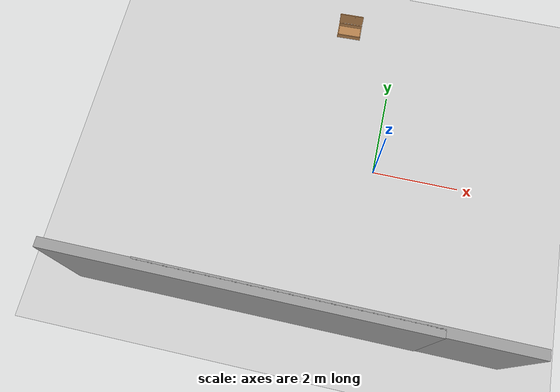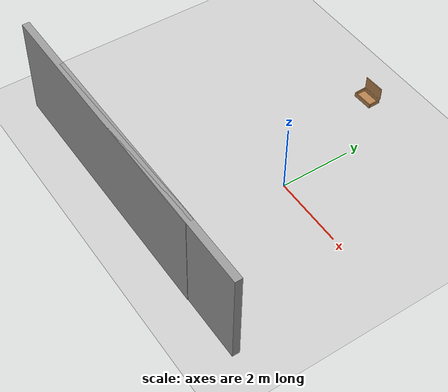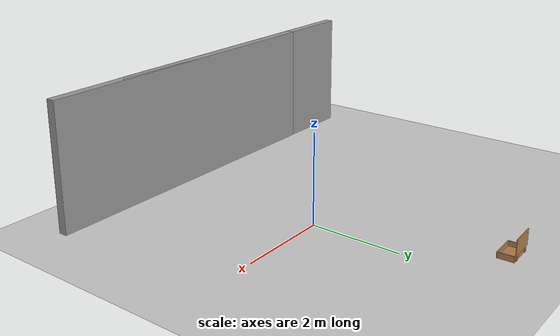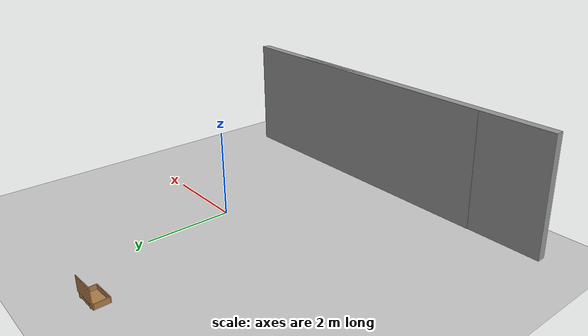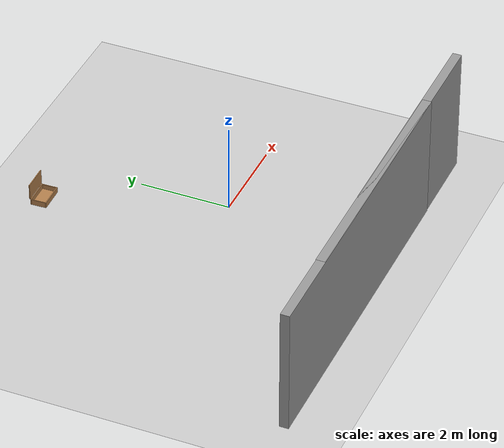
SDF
<sdf version="1.6">
 <world name="default">
  <model name="ground_plane">
   <static>1</static>
   <link name="link">
    <collision name="collision">
     <geometry><plane><normal>0 0 1</normal><size>100 100</size></plane></geometry>
     <surface><friction><ode><mu>100</mu><mu2>50</mu2></ode></friction></surface>
    </collision>
    <visual name="visual">
     <transparency>1</transparency>
     <cast_shadows>0</cast_shadows>
     <geometry><plane><normal>0 0 1</normal><size>100 100</size></plane></geometry>
     <material>
      <script><uri>file://media/materials/scripts/gazebo.material</uri><name>Gazebo/Grey</name></script>
     </material>
    </visual>
   </link>
  </model>
  <model name="grey_wall">
   <static>1</static>
   <link name="link">
    <pose>0 0 1.4 0 -0 0</pose>
    <collision name="collision"><geometry><box><size>7.5 0.2 2.8</size></box></geometry></collision>
    <visual name="visual">
     <cast_shadows>0</cast_shadows>
     <geometry><box><size>7.5 0.2 2.8</size></box></geometry>
     <material>
      <script>
       <uri>model://grey_wall/materials/scripts</uri>
       <uri>model://grey_wall/materials/textures</uri>
       <name>vrc/grey_wall</name>
      </script>
     </material>
    </visual>
   </link>
   <pose>-2.21193 -3.74132 0 0 -0 0</pose>
  </model>
  <model name="grey_wall_clone">
   <static>1</static>
   <link name="link">
    <pose>0 0 1.4 0 -0 0</pose>
    <collision name="collision"><geometry><box><size>7.5 0.2 2.8</size></box></geometry></collision>
    <visual name="visual">
     <cast_shadows>0</cast_shadows>
     <geometry><box><size>7.5 0.2 2.8</size></box></geometry>
     <material>
      <script>
       <uri>model://grey_wall/materials/scripts</uri>
       <uri>model://grey_wall/materials/textures</uri>
       <name>vrc/grey_wall</name>
      </script>
     </material>
    </visual>
   </link>
   <pose>-0.424221 -3.7304 0 0 -0 0</pose>
  </model>
  <model name="wooden_case">
   <link name="base">
    <pose>0 0 0.024 0 -0 0</pose>
    <inertial>
     <pose>-0.022184 0 0.171592 0 -0 0</pose>
     <mass>3.96264</mass>
     <inertia>
      <ixx>0.213536</ixx>
      <ixy>0</ixy>
      <ixz>0.000779377</ixz>
      <iyy>0.0708943</iyy>
      <iyz>0</iyz>
      <izz>0.154604</izz>
     </inertia>
    </inertial>
    <collision name="collision_back">
     <pose>-0.053975 0 0.1778 0 -0 0</pose>
     <geometry><box><size>0.01905 0.5461 0.3175</size></box></geometry>
     <surface>
      <contact>
       <poissons_ratio>0.347</poissons_ratio>
       <elastic_modulus>8.8e+09</elastic_modulus>
       <ode><kp>100000</kp><kd>100</kd><max_vel>100</max_vel><min_depth>0.001</min_depth></ode>
      </contact>
      <friction>
       <torsional>
        <coefficient>1</coefficient>
        <use_patch_radius>0</use_patch_radius>
        <surface_radius>0.01</surface_radius>
       </torsional>
      </friction>
     </surface>
    </collision>
    <visual name="visual_back">
     <pose>-0.053975 0 0.1778 0 -0 0</pose>
     <geometry><box><size>0.01905 0.5461 0.3175</size></box></geometry>
     <material>
      <script><uri>file://media/materials/scripts/gazebo.material</uri><name>Gazebo/Wood</name></script>
     </material>
    </visual>
    <collision name="collision_bottom">
     <pose>0 0 0.009525 0 -0 0</pose>
     <geometry><box><size>0.127 0.5842 0.01905</size></box></geometry>
     <surface>
      <contact>
       <poissons_ratio>0.347</poissons_ratio>
       <elastic_modulus>8.8e+09</elastic_modulus>
       <ode><kp>100000</kp><kd>100</kd><max_vel>100</max_vel><min_depth>0.001</min_depth></ode>
      </contact>
      <friction>
       <torsional>
        <coefficient>1</coefficient>
        <use_patch_radius>0</use_patch_radius>
        <surface_radius>0.01</surface_radius>
       </torsional>
      </friction>
     </surface>
    </collision>
    <visual name="visual_bottom">
     <pose>0 0 0.009525 0 -0 0</pose>
     <geometry><box><size>0.127 0.5842 0.01905</size></box></geometry>
     <material>
      <script><uri>file://media/materials/scripts/gazebo.material</uri><name>Gazebo/Wood</name></script>
     </material>
    </visual>
    <collision name="collision_top">
     <pose>0 0 0.346075 0 -0 0</pose>
     <geometry><box><size>0.127 0.5842 0.01905</size></box></geometry>
     <surface>
      <contact>
       <poissons_ratio>0.347</poissons_ratio>
       <elastic_modulus>8.8e+09</elastic_modulus>
       <ode><kp>100000</kp><kd>100</kd><max_vel>100</max_vel><min_depth>0.001</min_depth></ode>
      </contact>
      <friction>
       <torsional>
        <coefficient>1</coefficient>
        <use_patch_radius>0</use_patch_radius>
        <surface_radius>0.01</surface_radius>
       </torsional>
      </friction>
     </surface>
    </collision>
    <visual name="visual_top">
     <pose>0 0 0.346075 0 -0 0</pose>
     <geometry><box><size>0.127 0.5842 0.01905</size></box></geometry>
     <material>
      <script><uri>file://media/materials/scripts/gazebo.material</uri><name>Gazebo/Wood</name></script>
     </material>
    </visual>
    <collision name="collision_left">
     <pose>0 -0.282575 0.1778 0 -0 0</pose>
     <geometry><box><size>0.127 0.01905 0.3175</size></box></geometry>
     <surface>
      <contact>
       <poissons_ratio>0.347</poissons_ratio>
       <elastic_modulus>8.8e+09</elastic_modulus>
       <ode><kp>100000</kp><kd>100</kd><max_vel>100</max_vel><min_depth>0.001</min_depth></ode>
      </contact>
      <friction>
       <torsional>
        <coefficient>1</coefficient>
        <use_patch_radius>0</use_patch_radius>
        <surface_radius>0.01</surface_radius>
       </torsional>
      </friction>
     </surface>
    </collision>
    <visual name="visual_left">
     <pose>0 -0.282575 0.1778 0 -0 0</pose>
     <geometry><box><size>0.127 0.01905 0.3175</size></box></geometry>
     <material>
      <script><uri>file://media/materials/scripts/gazebo.material</uri><name>Gazebo/Wood</name></script>
     </material>
    </visual>
    <collision name="collision_right">
     <pose>0 0.282575 0.1778 0 -0 0</pose>
     <geometry><box><size>0.127 0.01905 0.3175</size></box></geometry>
     <surface>
      <contact>
       <poissons_ratio>0.347</poissons_ratio>
       <elastic_modulus>8.8e+09</elastic_modulus>
       <ode><kp>100000</kp><kd>100</kd><max_vel>100</max_vel><min_depth>0.001</min_depth></ode>
      </contact>
      <friction>
       <torsional>
        <coefficient>1</coefficient>
        <use_patch_radius>0</use_patch_radius>
        <surface_radius>0.01</surface_radius>
       </torsional>
      </friction>
     </surface>
    </collision>
    <visual name="visual_right">
     <pose>0 0.282575 0.1778 0 -0 0</pose>
     <geometry><box><size>0.127 0.01905 0.3175</size></box></geometry>
     <material>
      <script><uri>file://media/materials/scripts/gazebo.material</uri><name>Gazebo/Wood</name></script>
     </material>
    </visual>
    <collision name="collision_block_left">
     <pose>0.0095 -0.2151 -0.012 0 -0 0</pose>
     <geometry><box><size>0.108 0.05 0.024</size></box></geometry>
     <surface>
      <contact>
       <poissons_ratio>0.347</poissons_ratio>
       <elastic_modulus>8.8e+09</elastic_modulus>
       <ode><kp>100000</kp><kd>100</kd><max_vel>100</max_vel><min_depth>0.001</min_depth></ode>
      </contact>
      <friction>
       <torsional>
        <coefficient>1</coefficient>
        <use_patch_radius>0</use_patch_radius>
        <surface_radius>0.01</surface_radius>
       </torsional>
      </friction>
     </surface>
    </collision>
    <visual name="visual_block_left">
     <pose>0.0095 -0.2151 -0.012 0 -0 0</pose>
     <geometry><box><size>0.108 0.05 0.024</size></box></geometry>
     <material>
      <script><uri>file://media/materials/scripts/gazebo.material</uri><name>Gazebo/Wood</name></script>
     </material>
    </visual>
    <collision name="collision_block_right">
     <pose>0.0095 0.2151 -0.012 0 -0 0</pose>
     <geometry><box><size>0.108 0.05 0.024</size></box></geometry>
     <surface>
      <contact>
       <poissons_ratio>0.347</poissons_ratio>
       <elastic_modulus>8.8e+09</elastic_modulus>
       <ode><kp>100000</kp><kd>100</kd><max_vel>100</max_vel><min_depth>0.001</min_depth></ode>
      </contact>
      <friction>
       <torsional>
        <coefficient>1</coefficient>
        <use_patch_radius>0</use_patch_radius>
        <surface_radius>0.01</surface_radius>
       </torsional>
      </friction>
     </surface>
    </collision>
    <visual name="visual_block_right">
     <pose>0.0095 0.2151 -0.012 0 -0 0</pose>
     <geometry><box><size>0.108 0.05 0.024</size></box></geometry>
     <material>
      <script><uri>file://media/materials/scripts/gazebo.material</uri><name>Gazebo/Wood</name></script>
     </material>
    </visual>
   </link>
   <link name="lid">
    <pose>0.243775 0 0.009525 0 -0 0</pose>
    <inertial>
     <mass>1.97874</mass>
     <inertia>
      <ixx>0.0563367</ixx>
      <ixy>0</ixy>
      <ixz>0</ixz>
      <iyy>0.020911</iyy>
      <iyz>0</iyz>
      <izz>0.0771281</izz>
     </inertia>
    </inertial>
    <collision name="collision">
     <geometry><box><size>0.3556 0.5842 0.01905</size></box></geometry>
     <surface>
      <contact>
       <poissons_ratio>0.347</poissons_ratio>
       <elastic_modulus>8.8e+09</elastic_modulus>
       <ode><kp>100000</kp><kd>100</kd><max_vel>100</max_vel><min_depth>0.001</min_depth></ode>
      </contact>
      <friction>
       <torsional>
        <coefficient>1</coefficient>
        <use_patch_radius>0</use_patch_radius>
        <surface_radius>0.01</surface_radius>
       </torsional>
      </friction>
     </surface>
    </collision>
    <visual name="visual">
     <geometry><box><size>0.3556 0.5842 0.01905</size></box></geometry>
     <material>
      <script><uri>file://media/materials/scripts/gazebo.material</uri><name>Gazebo/Wood</name></script>
     </material>
    </visual>
    <visual name="tee_nut_1">
     <pose>0.122 -0.216 0 0 -0 0</pose>
     <geometry><cylinder><radius>0.00635</radius><length>0.0192405</length></cylinder></geometry>
     <material>
      <script><uri>file://media/materials/scripts/gazebo.material</uri><name>Gazebo/Grey</name></script>
     </material>
    </visual>
    <visual name="tee_nut_2">
     <pose>0.122 -0.088 0 0 -0 0</pose>
     <geometry><cylinder><radius>0.00635</radius><length>0.0192405</length></cylinder></geometry>
     <material>
      <script><uri>file://media/materials/scripts/gazebo.material</uri><name>Gazebo/Grey</name></script>
     </material>
    </visual>
    <visual name="tee_nut_3">
     <pose>0.122 0.088 0 0 -0 0</pose>
     <geometry><cylinder><radius>0.00635</radius><length>0.0192405</length></cylinder></geometry>
     <material>
      <script><uri>file://media/materials/scripts/gazebo.material</uri><name>Gazebo/Grey</name></script>
     </material>
    </visual>
    <visual name="tee_nut_4">
     <pose>0.122 0.216 0 0 -0 0</pose>
     <geometry><cylinder><radius>0.00635</radius><length>0.0192405</length></cylinder></geometry>
     <material>
      <script><uri>file://media/materials/scripts/gazebo.material</uri><name>Gazebo/Grey</name></script>
     </material>
    </visual>
   </link>
   <joint name="lid_hinge" type="revolute">
    <pose>-0.1778 0 0.01905 0 -0 0</pose>
    <parent>base</parent>
    <child>lid</child>
    <axis>
     <xyz>0 1 0</xyz>
     <limit><upper>0.523599</upper><lower>-1.5708</lower></limit>
     <use_parent_model_frame>0</use_parent_model_frame>
     <dynamics><spring_reference>0</spring_reference><spring_stiffness>0</spring_stiffness></dynamics>
    </axis>
   </joint>
   <pose>-1.24794 3.89205 0.06247 0 -1.57079 1.60107</pose>
  </model>
 </world>
</sdf>
